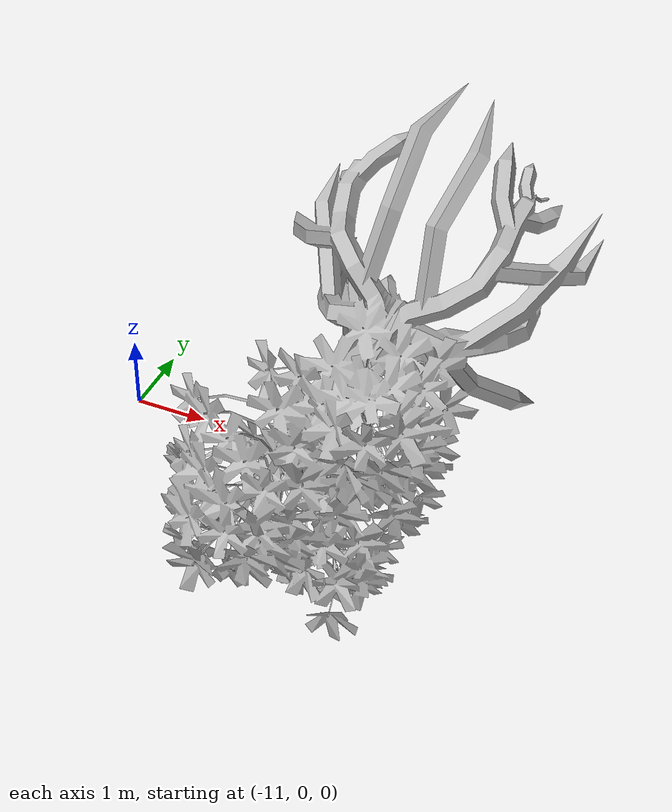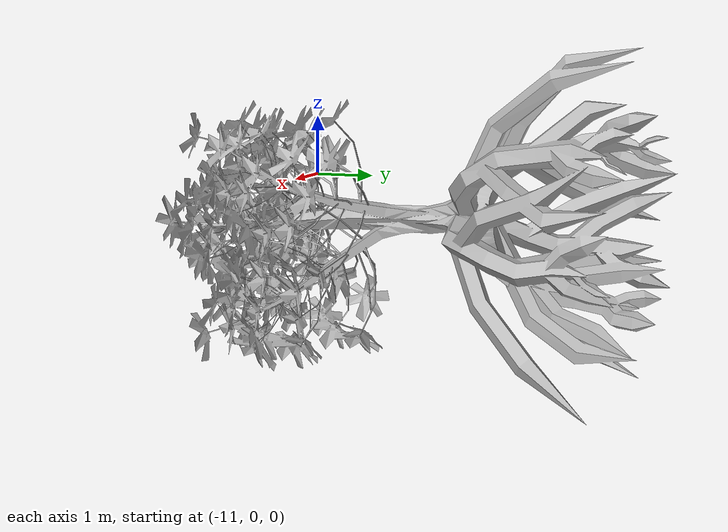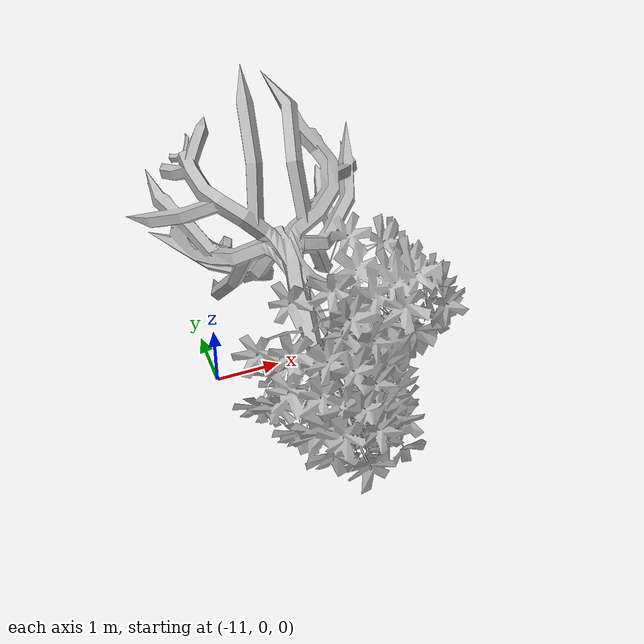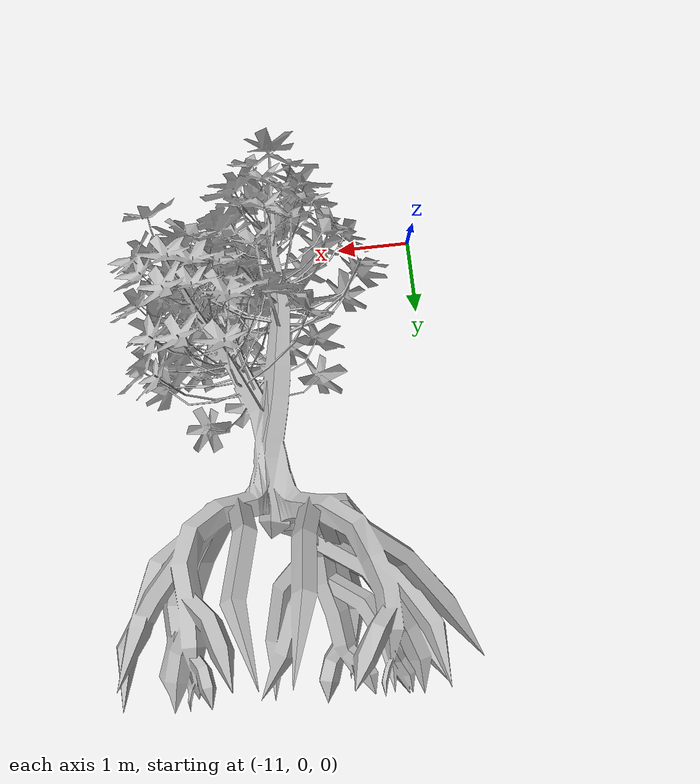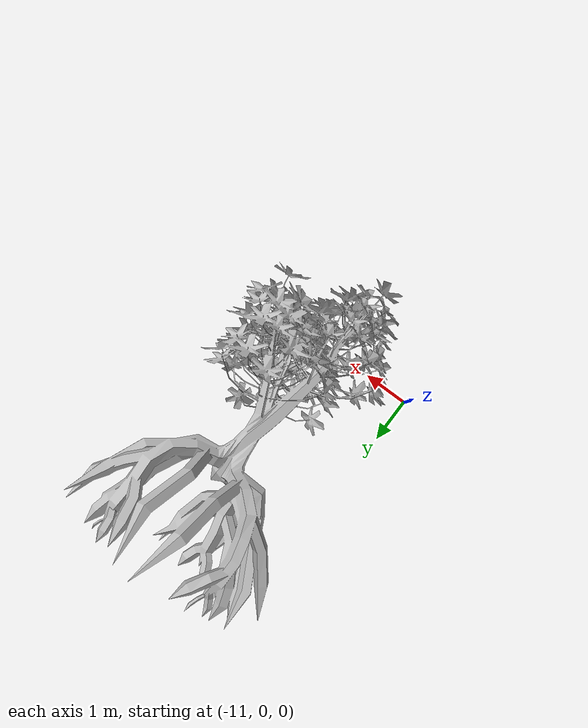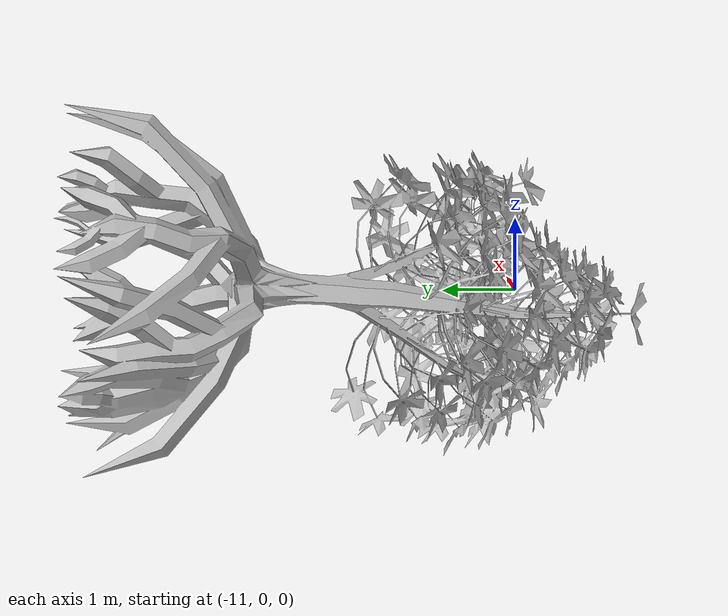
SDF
<?xml version="1.0" ?>
<sdf version="1.10">
  <model name="mangrove_02_8m">
    <pose>0 0 0 0 0 0</pose>
    <static>true</static>
    <link name="visual_only_link">
      <!-- Terrain at (14, 7) is approximately 0.03 m above world zero. -->
      <pose>-8.550 5.580 -0.20 1.5708 0 0</pose>
      <visual name="imported_mangrove_visual"><geometry><mesh><uri>model://mangrove_imported/meshes/Mangrovetree.glb</uri><scale>3.0 3.0 3.0</scale></mesh></geometry></visual>
    </link>
    <!-- The converted GLB mesh is the authoritative visual and collision geometry. -->
    <!-- A mesh collision is used so Gazebo physics and LiDAR can detect the tree shape. -->
    <link name="glb_collision_link">
      <pose>0 0 0.500 0 0 0</pose>
      <collision name="glb_mesh_collision">
        <geometry><cylinder><radius>0.85</radius><length>3.7</length></cylinder></geometry>
      </collision>
    </link>
  </model>
</sdf>
